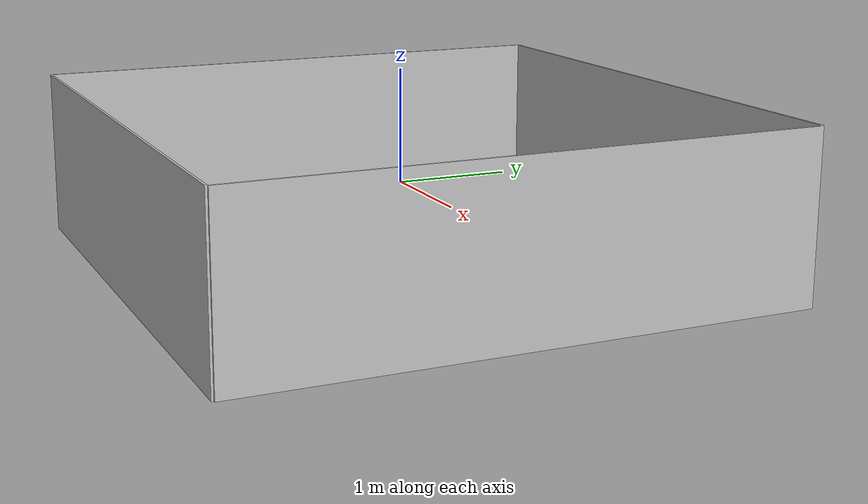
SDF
<?xml version="1.0" ?>
<sdf version="1.5">
  <model name="LaViRIA_barnyard">
    <link name="link">
      <inertial>
        <pose>0 0 0.4 0 0 0</pose>
        <mass>390.318</mass>
        <inertia>
          <ixx>72.9034</ixx>
          <iyy>809.906</iyy>
          <izz>882.784</izz>
          <ixy>0</ixy>
          <ixz>0</ixz>
        </inertia>
      </inertial>
      <collision name="collision">
        <geometry>
          <mesh>
            <uri>model://LaViRIA_barnyard/meshes/LaViRIA_barnyard.dae</uri>
          </mesh>
        </geometry>
      </collision>
      <visual name="visual">
        <geometry>
          <mesh>
            <uri>model://LaViRIA_barnyard/meshes/LaViRIA_barnyard.dae</uri>
          </mesh>
        </geometry>
      </visual>
    </link>
  </model>
</sdf>
